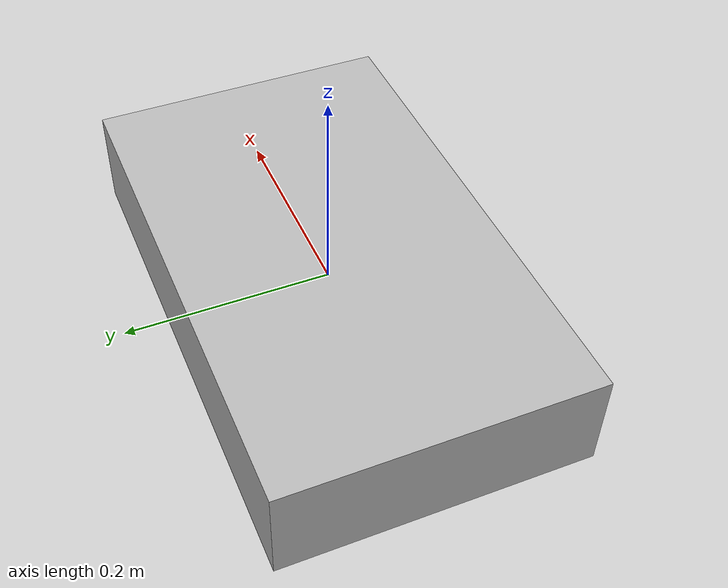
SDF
<?xml version="1.0"?>
<sdf version="1.8">
  <model name="rescue_bot">
    <pose>0 0 0 0 0 0</pose>

    <!-- base -->
    <link name="base_link">
      <inertial><mass>10</mass>
        <inertia><ixx>0.1</ixx><iyy>0.1</iyy><izz>0.1</izz></inertia>
      </inertial>
      <collision name="base_col"><geometry><box><size>0.5 0.3 0.1</size></box></geometry></collision>
      <visual   name="base_vis"><geometry><box><size>0.5 0.3 0.1</size></box></geometry></visual>
    </link>

    <!-- ruedas -->
    <link name="left_wheel">
      <inertial><mass>0.5</mass><inertia><ixx>0.001</ixx><iyy>0.001</iyy><izz>0.001</izz></inertia></inertial>
      <collision name="c"><geometry><cylinder><radius>0.08</radius><length>0.04</length></cylinder></geometry></collision>
      <visual   name="v"><geometry><cylinder><radius>0.08</radius><length>0.04</length></cylinder></geometry></visual>
    </link>
    <joint name="left_wheel_joint" type="revolute">
      <parent>base_link</parent><child>left_wheel</child>
      <pose>0 0 0 0 0 0</pose>
      <axis><xyz>0 1 0</xyz><limit><lower>-1e16</lower><upper>1e16</upper></limit></axis>
    </joint>

    <link name="right_wheel">
      <inertial>
        <mass>0.5</mass>
        <inertia>
          <ixx>0.001</ixx><iyy>0.001</iyy><izz>0.001</izz>
        </inertia>
      </inertial>
      <collision name="c">
        <geometry>
          <cylinder><radius>0.08</radius><length>0.04</length></cylinder>
        </geometry>
      </collision>
      <visual name="v">
        <geometry>
          <cylinder><radius>0.08</radius><length>0.04</length></cylinder>
        </geometry>
      </visual>
    </link>

    <joint name="right_wheel_joint" type="revolute">
      <parent>base_link</parent>
      <child>right_wheel</child>
      <pose>0 0 0 0 0 0</pose>
      <axis>
        <xyz>0 1 0</xyz>
        <limit><lower>-1e16</lower><upper>1e16</upper></limit>
      </axis>
    </joint>

    <!-- LIDAR sim (ray) opcional -->
    <link name="lidar_link">
      <sensor name="lidar" type="gpu_lidar">
        <update_rate>15</update_rate>
        <ray>
          <scan><horizontal><samples>720</samples><resolution>1</resolution><min_angle>-3.14</min_angle><max_angle>3.14</max_angle></horizontal></scan>
          <range><min>0.12</min><max>12.0</max></range>
        </ray>
        <topic>/lidar</topic>
      </sensor>
    </link>
    <joint name="lidar_joint" type="fixed"><parent>base_link</parent><child>lidar_link</child></joint>

    <!-- Dif. drive -->
    <plugin name="gz::sim::systems::DiffDrive" filename="libgz-sim-diff-drive-system.so">
      <left_joint>left_wheel_joint</left_joint>
      <right_joint>right_wheel_joint</right_joint>
      <wheel_separation>0.28</wheel_separation>
      <wheel_radius>0.08</wheel_radius>
      <topic>/cmd_vel</topic>
      <odom_topic>/odom</odom_topic>
      <odom_frame>odom</odom_frame>
      <robot_base_frame>base_link</robot_base_frame>
      <publish_odom>true</publish_odom>
      <publish_tf>false</publish_tf> <!-- TF lo da robot_state_publisher -->
    </plugin>
  </model>
</sdf>
